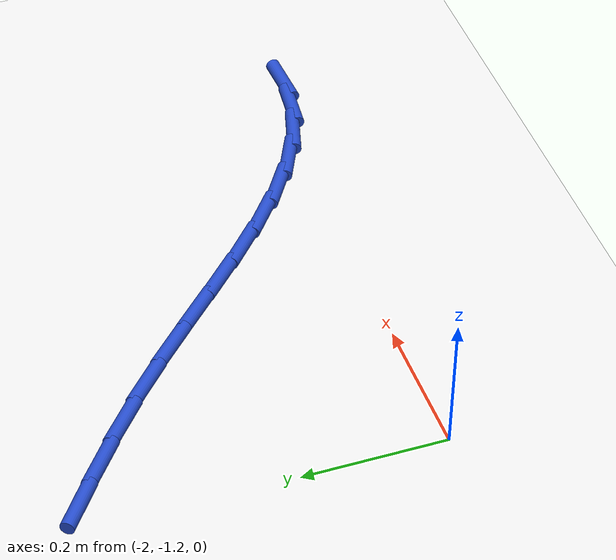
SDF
<sdf version="1.6">
 <world name="default">
  <model name="ground_plane">
   <static>1</static>
   <link name="link">
    <collision name="collision">
     <geometry><plane><normal>0 0 1</normal><size>100 100</size></plane></geometry>
     <surface><friction><ode><mu>100</mu><mu2>50</mu2></ode></friction></surface>
    </collision>
    <visual name="visual">
     <cast_shadows>0</cast_shadows>
     <geometry><plane><normal>0 0 1</normal><size>100 100</size></plane></geometry>
     <material>
      <script><uri>file://media/materials/scripts/gazebo.material</uri><name>Gazebo/WhiteGlow</name></script>
     </material>
    </visual>
   </link>
  </model>
  <model name="line">
   <link name="link_69">
    <pose>-1.9633076926557078 -0.7242393473447993 0.01 0 1.57 -0.6500640803418462</pose>
    <collision name="collision">
     <geometry><cylinder><radius>0.01</radius><length>0.08</length></cylinder></geometry>
    </collision>
    <visual name="visual">
     <material>
      <script><name>Gazebo/Blue</name><uri>file://media/materials/scripts/gazebo.material</uri></script>
     </material>
     <geometry><cylinder><radius>0.01</radius><length>0.08</length></cylinder></geometry>
    </visual>
   </link>
   <link name="link_70">
    <pose>-1.9047097700148958 -0.7687916712202961 0.01 0 1.57 -0.6727593332116655</pose>
    <collision name="collision">
     <geometry><cylinder><radius>0.01</radius><length>0.08</length></cylinder></geometry>
    </collision>
    <visual name="visual">
     <material>
      <script><name>Gazebo/Blue</name><uri>file://media/materials/scripts/gazebo.material</uri></script>
     </material>
     <geometry><cylinder><radius>0.01</radius><length>0.08</length></cylinder></geometry>
    </visual>
   </link>
   <link name="link_71">
    <pose>-1.846723528630462 -0.8149925164141245 0.01 0 1.57 -0.7090278321808188</pose>
    <collision name="collision">
     <geometry><cylinder><radius>0.01</radius><length>0.08</length></cylinder></geometry>
    </collision>
    <visual name="visual">
     <material>
      <script><name>Gazebo/Blue</name><uri>file://media/materials/scripts/gazebo.material</uri></script>
     </material>
     <geometry><cylinder><radius>0.01</radius><length>0.08</length></cylinder></geometry>
    </visual>
   </link>
   <link name="link_72">
    <pose>-1.7903662229211594 -0.8633380495539053 0.01 0 1.57 -0.7505575703742902</pose>
    <collision name="collision">
     <geometry><cylinder><radius>0.01</radius><length>0.08</length></cylinder></geometry>
    </collision>
    <visual name="visual">
     <material>
      <script><name>Gazebo/Blue</name><uri>file://media/materials/scripts/gazebo.material</uri></script>
     </material>
     <geometry><cylinder><radius>0.01</radius><length>0.08</length></cylinder></geometry>
    </visual>
   </link>
   <link name="link_73">
    <pose>-1.7362468137741507 -0.913811892572482 0.01 0 1.57 -0.7762699390442348</pose>
    <collision name="collision">
     <geometry><cylinder><radius>0.01</radius><length>0.08</length></cylinder></geometry>
    </collision>
    <visual name="visual">
     <material>
      <script><name>Gazebo/Blue</name><uri>file://media/materials/scripts/gazebo.material</uri></script>
     </material>
     <geometry><cylinder><radius>0.01</radius><length>0.08</length></cylinder></geometry>
    </visual>
   </link>
   <link name="link_74">
    <pose>-1.6839726555927266 -0.9651403168697279 0.01 0 1.57 -0.7829166577574911</pose>
    <collision name="collision">
     <geometry><cylinder><radius>0.01</radius><length>0.08</length></cylinder></geometry>
    </collision>
    <visual name="visual">
     <material>
      <script><name>Gazebo/Blue</name><uri>file://media/materials/scripts/gazebo.material</uri></script>
     </material>
     <geometry><cylinder><radius>0.01</radius><length>0.08</length></cylinder></geometry>
    </visual>
   </link>
   <link name="link_75">
    <pose>-1.633000315894574 -1.0158603059624645 0.01 0 1.57 -0.7695652072882722</pose>
    <collision name="collision">
     <geometry><cylinder><radius>0.01</radius><length>0.08</length></cylinder></geometry>
    </collision>
    <visual name="visual">
     <material>
      <script><name>Gazebo/Blue</name><uri>file://media/materials/scripts/gazebo.material</uri></script>
     </material>
     <geometry><cylinder><radius>0.01</radius><length>0.08</length></cylinder></geometry>
    </visual>
   </link>
   <link name="link_76">
    <pose>-1.5827863621973808 -1.0645088433675165 0.01 0 1.57 -0.7340840521416137</pose>
    <collision name="collision">
     <geometry><cylinder><radius>0.01</radius><length>0.08</length></cylinder></geometry>
    </collision>
    <visual name="visual">
     <material>
      <script><name>Gazebo/Blue</name><uri>file://media/materials/scripts/gazebo.material</uri></script>
     </material>
     <geometry><cylinder><radius>0.01</radius><length>0.08</length></cylinder></geometry>
    </visual>
   </link>
   <link name="link_77">
    <pose>-1.532787362018835 -1.1096229126017059 0.01 0 1.57 -0.6729768404843156</pose>
    <collision name="collision">
     <geometry><cylinder><radius>0.01</radius><length>0.08</length></cylinder></geometry>
    </collision>
    <visual name="visual">
     <material>
      <script><name>Gazebo/Blue</name><uri>file://media/materials/scripts/gazebo.material</uri></script>
     </material>
     <geometry><cylinder><radius>0.01</radius><length>0.08</length></cylinder></geometry>
    </visual>
   </link>
   <link name="link_78">
    <pose>-1.4824598828766222 -1.1497394971818562 0.01 0 1.57 -0.5815270765937779</pose>
    <collision name="collision">
     <geometry><cylinder><radius>0.01</radius><length>0.08</length></cylinder></geometry>
    </collision>
    <visual name="visual">
     <material>
      <script><name>Gazebo/Blue</name><uri>file://media/materials/scripts/gazebo.material</uri></script>
     </material>
     <geometry><cylinder><radius>0.01</radius><length>0.08</length></cylinder></geometry>
    </visual>
   </link>
   <link name="link_79">
    <pose>-1.431260492288432 -1.1833955806247902 0.01 0 1.57 -0.45486969602618166</pose>
    <collision name="collision">
     <geometry><cylinder><radius>0.01</radius><length>0.08</length></cylinder></geometry>
    </collision>
    <visual name="visual">
     <material>
      <script><name>Gazebo/Blue</name><uri>file://media/materials/scripts/gazebo.material</uri></script>
     </material>
     <geometry><cylinder><radius>0.01</radius><length>0.08</length></cylinder></geometry>
    </visual>
   </link>
   <link name="link_80">
    <pose>-1.3786457577719495 -1.2091281464473316 0.01 0 1.57 -0.2913634540380857</pose>
    <collision name="collision">
     <geometry><cylinder><radius>0.01</radius><length>0.08</length></cylinder></geometry>
    </collision>
    <visual name="visual">
     <material>
      <script><name>Gazebo/Blue</name><uri>file://media/materials/scripts/gazebo.material</uri></script>
     </material>
     <geometry><cylinder><radius>0.01</radius><length>0.08</length></cylinder></geometry>
    </visual>
   </link>
   <link name="link_81">
    <pose>-1.3240787989393685 -1.2254926825512558 0.01 0 1.57 -0.11373652747286948</pose>
    <collision name="collision">
     <geometry><cylinder><radius>0.01</radius><length>0.08</length></cylinder></geometry>
    </collision>
    <visual name="visual">
     <material>
      <script><name>Gazebo/Blue</name><uri>file://media/materials/scripts/gazebo.material</uri></script>
     </material>
     <geometry><cylinder><radius>0.01</radius><length>0.08</length></cylinder></geometry>
    </visual>
   </link>
   <link name="link_82">
    <pose>-1.2673513102189173 -1.2319726358105396 0.01 0 1.57 0.0439642777355188</pose>
    <collision name="collision">
     <geometry><cylinder><radius>0.01</radius><length>0.08</length></cylinder></geometry>
    </collision>
    <visual name="visual">
     <material>
      <script><name>Gazebo/Blue</name><uri>file://media/materials/scripts/gazebo.material</uri></script>
     </material>
     <geometry><cylinder><radius>0.01</radius><length>0.08</length></cylinder></geometry>
    </visual>
   </link>
  </model>
 </world>
</sdf>
